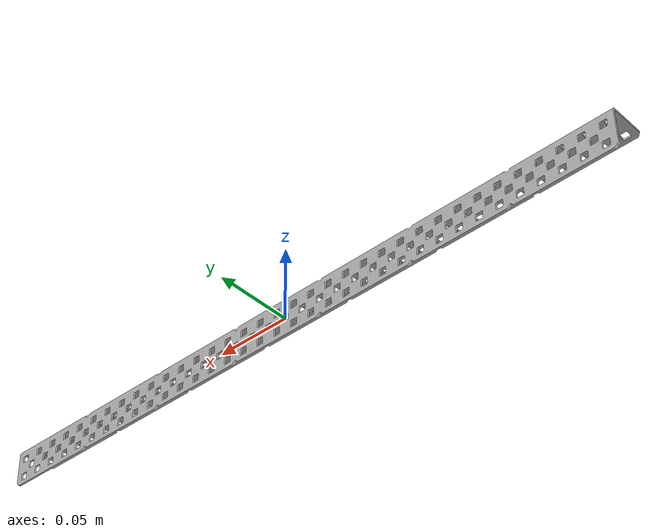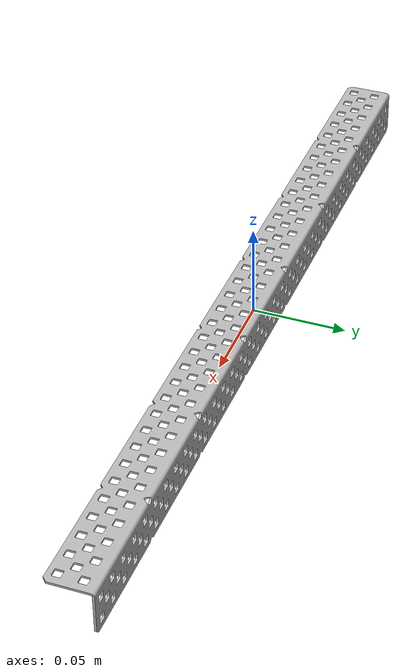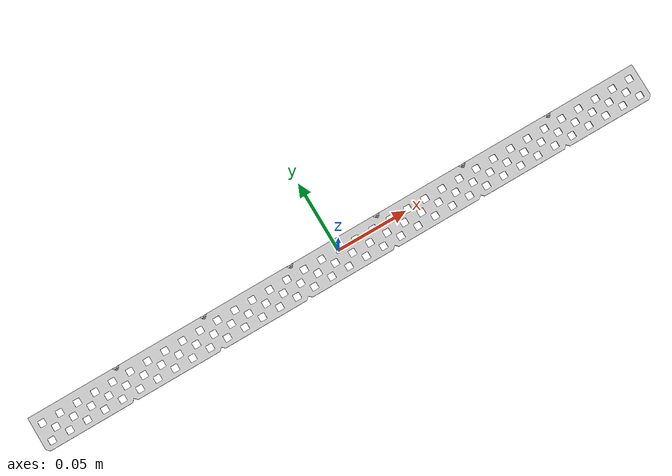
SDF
<?xml version='1.0'?>
<sdf version="1.4">
	<model name="Angle_2x2x35">
		<pose>0 0 0 0 0 0</pose>
		<static>true</static>
		<link name="body">
			<inertial>
				<mass>0.353</mass>
				<inertia>
					<ixx>0.00000000265</ixx>
					<ixy>0</ixy>
					<ixz>0</ixz>
					<iyy>0.00000033522</iyy>
					<iyz>0.00000000077</iyz>
					<izz>0.00000033522</izz>
				</inertia>
			</inertial>
			<collision name="collision">
				<geometry>
					<box>
						<size>0.444494 0.025400 0.025400</size>
					</box>
				</geometry>
			</collision>
			<visual name="visual">
				<geometry>
					<mesh><uri>model://Angel_2x2x35/Angle_2x2x35.dae</uri></mesh>
				</geometry>
			</visual>
		</link>
	</model>
</sdf>
